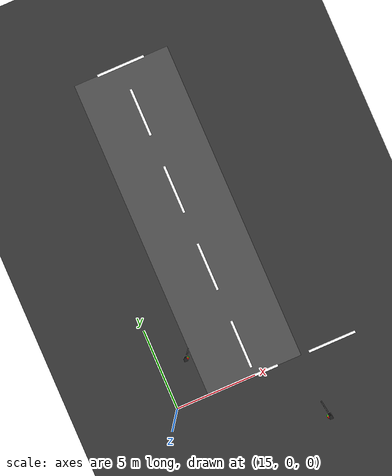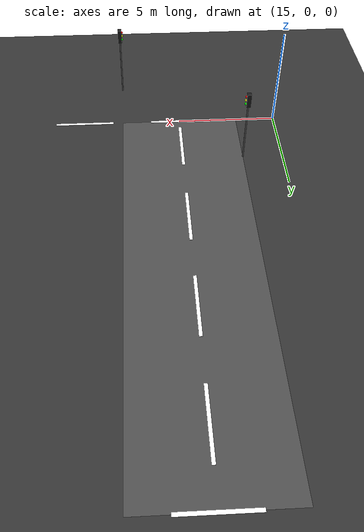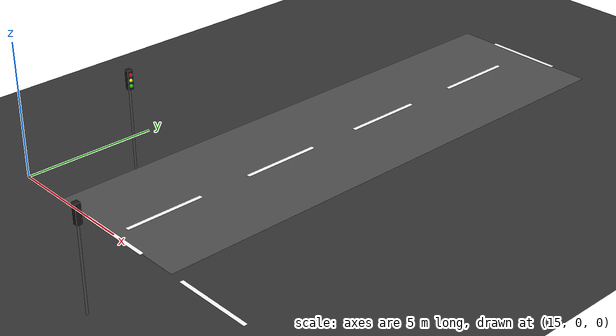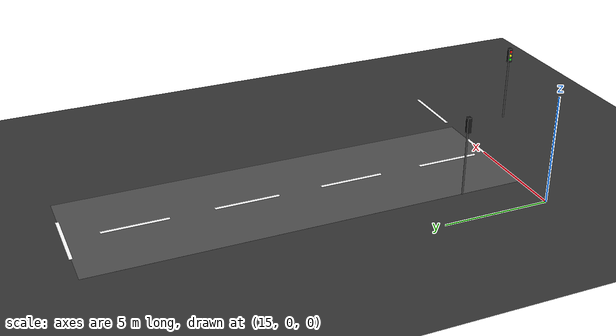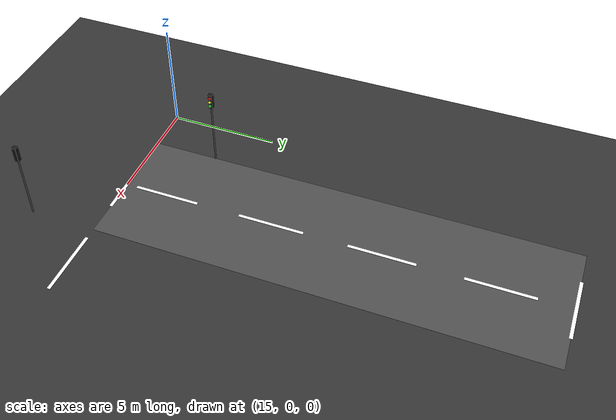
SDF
<sdf version="1.7">
 <world name="teknofest_city">
  <model name="ground_plane">
   <static>true</static>
   <link name="link">
    <collision name="collision">
     <geometry><plane><normal>0 0 1</normal><size>200 200</size></plane></geometry>
    </collision>
    <visual name="visual">
     <geometry><plane><normal>0 0 1</normal><size>200 200</size></plane></geometry>
     <material>
      <ambient>0.15 0.15 0.15 1</ambient>
      <diffuse>0.2 0.2 0.2 1</diffuse>
      <specular>0.05 0.05 0.05 1</specular>
     </material>
    </visual>
   </link>
  </model>
  <model name="road_ns_center">
   <static>true</static>
   <pose>20 10 0.002 0 0 0</pose>
   <link name="link">
    <visual name="visual">
     <geometry><box><size>6 20 0.001</size></box></geometry>
     <material><ambient>0.25 0.25 0.25 1</ambient><diffuse>0.3 0.3 0.3 1</diffuse></material>
    </visual>
   </link>
  </model>
  <model name="lane_ew_main_10">
   <static>true</static>
   <pose>20 0 0.005 0 0 0.0</pose>
   <link name="link">
    <visual name="visual">
     <geometry><box><size>3.0 0.15 0.01</size></box></geometry>
     <material><ambient>0.9 0.9 0.9 1</ambient><diffuse>1.0 1.0 1.0 1</diffuse></material>
    </visual>
   </link>
  </model>
  <model name="lane_ew_main_11">
   <static>true</static>
   <pose>25 0 0.005 0 0 0.0</pose>
   <link name="link">
    <visual name="visual">
     <geometry><box><size>3.0 0.15 0.01</size></box></geometry>
     <material><ambient>0.9 0.9 0.9 1</ambient><diffuse>1.0 1.0 1.0 1</diffuse></material>
    </visual>
   </link>
  </model>
  <model name="lane_ew_north_10">
   <static>true</static>
   <pose>20 20 0.005 0 0 0.0</pose>
   <link name="link">
    <visual name="visual">
     <geometry><box><size>3.0 0.15 0.01</size></box></geometry>
     <material><ambient>0.9 0.9 0.9 1</ambient><diffuse>1.0 1.0 1.0 1</diffuse></material>
    </visual>
   </link>
  </model>
  <model name="lane_ns_center_0">
   <static>true</static>
   <pose>20 2 0.005 0 0 1.5707</pose>
   <link name="link">
    <visual name="visual">
     <geometry><box><size>3.0 0.15 0.01</size></box></geometry>
     <material><ambient>0.9 0.9 0.9 1</ambient><diffuse>1.0 1.0 1.0 1</diffuse></material>
    </visual>
   </link>
  </model>
  <model name="lane_ns_center_1">
   <static>true</static>
   <pose>20 7 0.005 0 0 1.5707</pose>
   <link name="link">
    <visual name="visual">
     <geometry><box><size>3.0 0.15 0.01</size></box></geometry>
     <material><ambient>0.9 0.9 0.9 1</ambient><diffuse>1.0 1.0 1.0 1</diffuse></material>
    </visual>
   </link>
  </model>
  <model name="lane_ns_center_2">
   <static>true</static>
   <pose>20 12 0.005 0 0 1.5707</pose>
   <link name="link">
    <visual name="visual">
     <geometry><box><size>3.0 0.15 0.01</size></box></geometry>
     <material><ambient>0.9 0.9 0.9 1</ambient><diffuse>1.0 1.0 1.0 1</diffuse></material>
    </visual>
   </link>
  </model>
  <model name="lane_ns_center_3">
   <static>true</static>
   <pose>20 17 0.005 0 0 1.5707</pose>
   <link name="link">
    <visual name="visual">
     <geometry><box><size>3.0 0.15 0.01</size></box></geometry>
     <material><ambient>0.9 0.9 0.9 1</ambient><diffuse>1.0 1.0 1.0 1</diffuse></material>
    </visual>
   </link>
  </model>
  <model name="traffic_light_1">
   <static>true</static>
   <pose>17 3 0 0 0 0</pose>
   <link name="pole">
    <visual name="pole_visual">
     <geometry><cylinder><radius>0.04</radius><length>3.2</length></cylinder></geometry>
     <pose>0 0 1.6 0 0 0</pose>
     <material><ambient>0.2 0.2 0.2 1</ambient><diffuse>0.3 0.3 0.3 1</diffuse></material>
    </visual>
    <collision name="pole_collision">
     <geometry><cylinder><radius>0.04</radius><length>3.2</length></cylinder></geometry>
     <pose>0 0 1.6 0 0 0</pose>
    </collision>
   </link>
   <link name="housing">
    <pose>0 0 3.4 0 0 0</pose>
    <visual name="housing_visual">
     <geometry><box><size>0.2 0.2 0.7</size></box></geometry>
     <material><ambient>0.05 0.05 0.05 1</ambient><diffuse>0.1 0.1 0.1 1</diffuse></material>
    </visual>
    <collision name="housing_collision"><geometry><box><size>0.2 0.2 0.7</size></box></geometry></collision>
   </link>
   <joint name="housing_joint" type="fixed"><parent>pole</parent><child>housing</child></joint>
   <link name="red_light">
    <pose>0.11 0 3.6 0 0 0</pose>
    <visual name="red_visual">
     <geometry><sphere><radius>0.06</radius></sphere></geometry>
     <material>
      <ambient>0.8 0.0 0.0 1</ambient>
      <diffuse>1.0 0.0 0.0 1</diffuse>
      <emissive>0.6 0.0 0.0 1</emissive>
     </material>
    </visual>
   </link>
   <joint name="red_joint" type="fixed"><parent>housing</parent><child>red_light</child></joint>
   <link name="yellow_light">
    <pose>0.11 0 3.4 0 0 0</pose>
    <visual name="yellow_visual">
     <geometry><sphere><radius>0.06</radius></sphere></geometry>
     <material>
      <ambient>0.8 0.8 0.0 1</ambient>
      <diffuse>1.0 1.0 0.0 1</diffuse>
      <emissive>0.6 0.6 0.0 1</emissive>
     </material>
    </visual>
   </link>
   <joint name="yellow_joint" type="fixed"><parent>housing</parent><child>yellow_light</child></joint>
   <link name="green_light">
    <pose>0.11 0 3.2 0 0 0</pose>
    <visual name="green_visual">
     <geometry><sphere><radius>0.06</radius></sphere></geometry>
     <material>
      <ambient>0.0 0.8 0.0 1</ambient>
      <diffuse>0.0 1.0 0.0 1</diffuse>
      <emissive>0.0 0.6 0.0 1</emissive>
     </material>
    </visual>
   </link>
   <joint name="green_joint" type="fixed"><parent>housing</parent><child>green_light</child></joint>
  </model>
  <model name="traffic_light_2">
   <static>true</static>
   <pose>23 -3 0 0 0 3.14159</pose>
   <link name="pole">
    <visual name="pole_visual">
     <geometry><cylinder><radius>0.04</radius><length>3.2</length></cylinder></geometry>
     <pose>0 0 1.6 0 0 0</pose>
     <material><ambient>0.2 0.2 0.2 1</ambient><diffuse>0.3 0.3 0.3 1</diffuse></material>
    </visual>
    <collision name="pole_collision">
     <geometry><cylinder><radius>0.04</radius><length>3.2</length></cylinder></geometry>
     <pose>0 0 1.6 0 0 0</pose>
    </collision>
   </link>
   <link name="housing">
    <pose>0 0 3.4 0 0 0</pose>
    <visual name="housing_visual">
     <geometry><box><size>0.2 0.2 0.7</size></box></geometry>
     <material><ambient>0.05 0.05 0.05 1</ambient><diffuse>0.1 0.1 0.1 1</diffuse></material>
    </visual>
    <collision name="housing_collision"><geometry><box><size>0.2 0.2 0.7</size></box></geometry></collision>
   </link>
   <joint name="housing_joint" type="fixed"><parent>pole</parent><child>housing</child></joint>
   <link name="red_light">
    <pose>0.11 0 3.6 0 0 0</pose>
    <visual name="red_visual">
     <geometry><sphere><radius>0.06</radius></sphere></geometry>
     <material>
      <ambient>0.8 0.0 0.0 1</ambient>
      <diffuse>1.0 0.0 0.0 1</diffuse>
      <emissive>0.6 0.0 0.0 1</emissive>
     </material>
    </visual>
   </link>
   <joint name="red_joint" type="fixed"><parent>housing</parent><child>red_light</child></joint>
   <link name="yellow_light">
    <pose>0.11 0 3.4 0 0 0</pose>
    <visual name="yellow_visual">
     <geometry><sphere><radius>0.06</radius></sphere></geometry>
     <material>
      <ambient>0.8 0.8 0.0 1</ambient>
      <diffuse>1.0 1.0 0.0 1</diffuse>
      <emissive>0.6 0.6 0.0 1</emissive>
     </material>
    </visual>
   </link>
   <joint name="yellow_joint" type="fixed"><parent>housing</parent><child>yellow_light</child></joint>
   <link name="green_light">
    <pose>0.11 0 3.2 0 0 0</pose>
    <visual name="green_visual">
     <geometry><sphere><radius>0.06</radius></sphere></geometry>
     <material>
      <ambient>0.0 0.8 0.0 1</ambient>
      <diffuse>0.0 1.0 0.0 1</diffuse>
      <emissive>0.0 0.6 0.0 1</emissive>
     </material>
    </visual>
   </link>
   <joint name="green_joint" type="fixed"><parent>housing</parent><child>green_light</child></joint>
  </model>
 </world>
</sdf>
